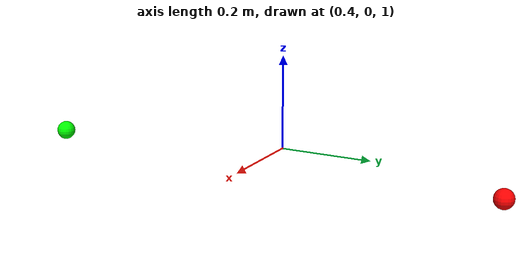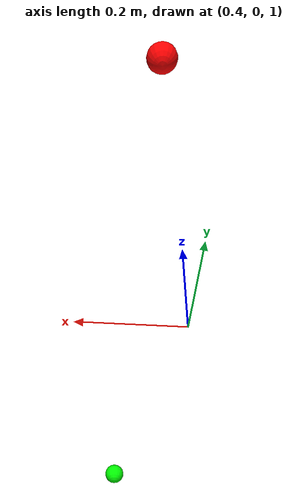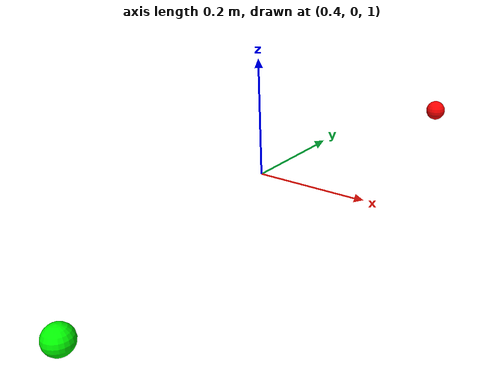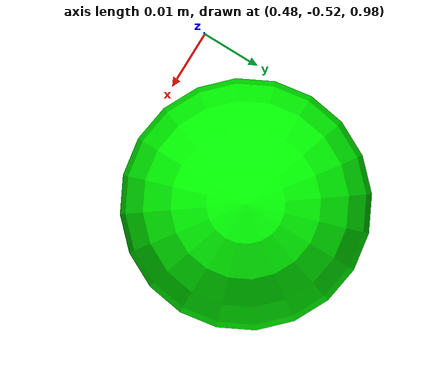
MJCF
<mujoco model="balls">
    <!--To change the bouncing off the balls change the solref parameter-->
    <worldbody>
        <body name="Ball1" pos="0.5 0.5 1">
        <freejoint/>
        <geom name="ball1" type="sphere" size=".02" solref="-1000 0" rgba="1 0 0 1"/>
        </body>
        <body name="Ball2" pos="0.5 -0.5 1">
        <freejoint/>
        <geom name="ball2" type="sphere" size=".02" solref="-1000 0" rgba="0 1 0 1"/>
        </body>
    </worldbody>
</mujoco>
